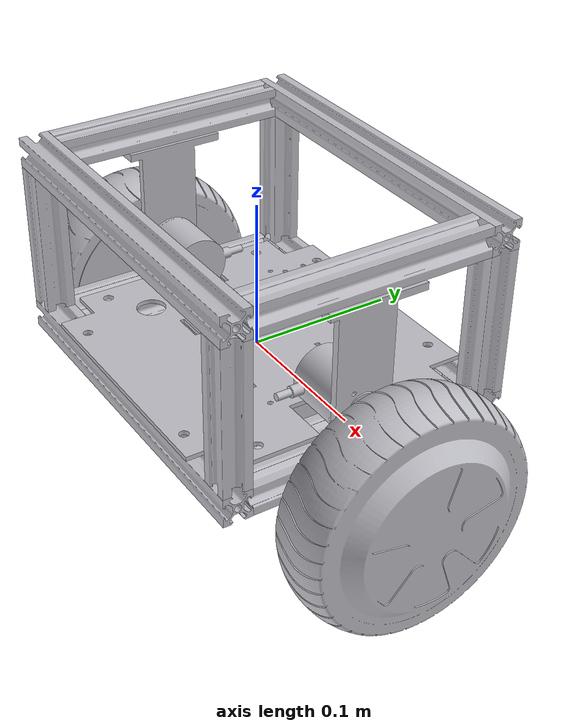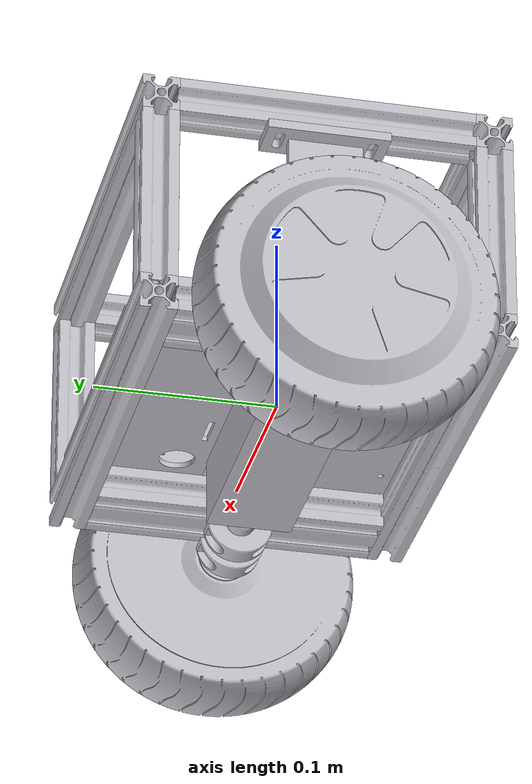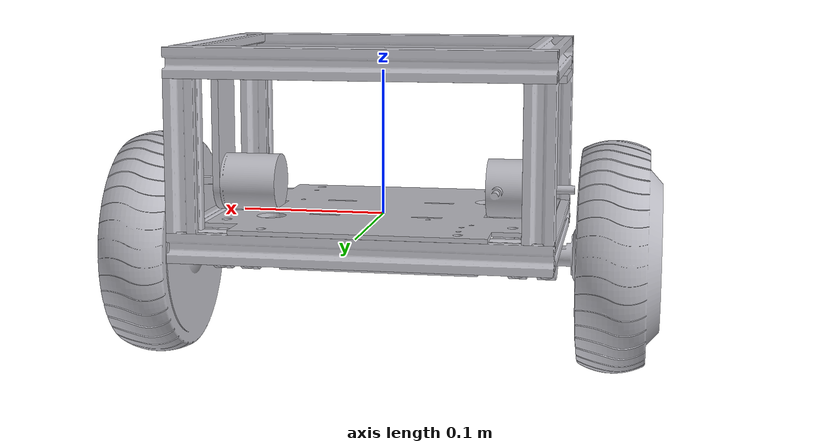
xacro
<?xml version="1.0" ?>
<robot name="assembly" xmlns:xacro="http://www.ros.org/wiki/xacro">

<xacro:include filename="$(find assembly_description)/urdf/materials.xacro" />
<xacro:include filename="$(find assembly_description)/urdf/assembly.trans" />
<xacro:include filename="$(find assembly_description)/urdf/assembly.gazebo" />
<link name="base_link">
  <inertial>
    <origin xyz="2.891151938704374e-05 -3.589068063802687e-05 0.0015000000000000011" rpy="0 0 0"/>
    <mass value="0.061915042915976895"/>
    <inertia ixx="0.000208" iyy="0.00019" izz="0.000398" ixy="3e-06" iyz="0.0" ixz="0.0"/>
  </inertial>
  <visual>
    <origin xyz="0 0 0" rpy="0 0 0"/>
    <geometry>
      <mesh filename="file://$(find assembly_description)/meshes/base_link.stl" scale="0.001 0.001 0.001"/>
    </geometry>
    <material name="silver"/>
  </visual>
  <collision>
    <origin xyz="0 0 0" rpy="0 0 0"/>
    <geometry>
      <mesh filename="file://$(find assembly_description)/meshes/base_link.stl" scale="0.001 0.001 0.001"/>
    </geometry>
  </collision>
</link>

<link name="Aluminium_20x20_250_back_1">
  <inertial>
    <origin xyz="-2.1316282072803005e-16 -0.009799998509883653 -0.009999999999999986" rpy="0 0 0"/>
    <mass value="0.10387281401481002"/>
    <inertia ixx="9e-06" iyy="0.000546" izz="0.000546" ixy="-0.0" iyz="-0.0" ixz="-0.0"/>
  </inertial>
  <visual>
    <origin xyz="-0.0 -0.1 -0.0" rpy="0 0 0"/>
    <geometry>
      <mesh filename="file://$(find assembly_description)/meshes/Aluminium_20x20_250_back_1.stl" scale="0.001 0.001 0.001"/>
    </geometry>
    <material name="silver"/>
  </visual>
  <collision>
    <origin xyz="-0.0 -0.1 -0.0" rpy="0 0 0"/>
    <geometry>
      <mesh filename="file://$(find assembly_description)/meshes/Aluminium_20x20_250_back_1.stl" scale="0.001 0.001 0.001"/>
    </geometry>
  </collision>
</link>

<link name="Battery_1">
  <inertial>
    <origin xyz="1.4210854715202004e-16 2.6645352591003756e-17 -0.019000000000000006" rpy="0 0 0"/>
    <mass value="1.9489182911"/>
    <inertia ixx="0.000593" iyy="0.003372" izz="0.003497" ixy="0.0" iyz="0.0" ixz="-0.0"/>
  </inertial>
  <visual>
    <origin xyz="-0.0 -0.0 -0.0" rpy="0 0 0"/>
    <geometry>
      <mesh filename="file://$(find assembly_description)/meshes/Battery_1.stl" scale="0.001 0.001 0.001"/>
    </geometry>
    <material name="silver"/>
  </visual>
  <collision>
    <origin xyz="-0.0 -0.0 -0.0" rpy="0 0 0"/>
    <geometry>
      <mesh filename="file://$(find assembly_description)/meshes/Battery_1.stl" scale="0.001 0.001 0.001"/>
    </geometry>
  </collision>
</link>

<link name="Aluminium_20x40_160_left_1">
  <inertial>
    <origin xyz="-0.23280000000004203 -0.08019999850988416 0.12499999999999298" rpy="0 0 0"/>
    <mass value="0.11612005351856171"/>
    <inertia ixx="0.000253" iyy="2.5e-05" izz="0.000267" ixy="-0.0" iyz="0.0" ixz="-0.0"/>
  </inertial>
  <visual>
    <origin xyz="-0.1278 -0.0804 0.135" rpy="0 0 0"/>
    <geometry>
      <mesh filename="file://$(find assembly_description)/meshes/Aluminium_20x40_160_left_1.stl" scale="0.001 0.001 0.001"/>
    </geometry>
    <material name="silver"/>
  </visual>
  <collision>
    <origin xyz="-0.1278 -0.0804 0.135" rpy="0 0 0"/>
    <geometry>
      <mesh filename="file://$(find assembly_description)/meshes/Aluminium_20x40_160_left_1.stl" scale="0.001 0.001 0.001"/>
    </geometry>
  </collision>
</link>

<link name="Aluminium_20x40_160_right_1">
  <inertial>
    <origin xyz="-0.022800000000042286 -0.08019999850988382 -0.12500000000001132" rpy="0 0 0"/>
    <mass value="0.11612005351856171"/>
    <inertia ixx="0.000253" iyy="2.5e-05" izz="0.000267" ixy="0.0" iyz="0.0" ixz="0.0"/>
  </inertial>
  <visual>
    <origin xyz="-0.1278 -0.0804 -0.115" rpy="0 0 0"/>
    <geometry>
      <mesh filename="file://$(find assembly_description)/meshes/Aluminium_20x40_160_right_1.stl" scale="0.001 0.001 0.001"/>
    </geometry>
    <material name="silver"/>
  </visual>
  <collision>
    <origin xyz="-0.1278 -0.0804 -0.115" rpy="0 0 0"/>
    <geometry>
      <mesh filename="file://$(find assembly_description)/meshes/Aluminium_20x40_160_right_1.stl" scale="0.001 0.001 0.001"/>
    </geometry>
  </collision>
</link>

<link name="Shaft_Collar_16mm_left1_1">
  <inertial>
    <origin xyz="-0.10499991829768908 0.02000000149011615 -0.03697410818676196" rpy="0 0 0"/>
    <mass value="0.01004347066493271"/>
    <inertia ixx="1e-06" iyy="0.0" izz="1e-06" ixy="0.0" iyz="-0.0" ixz="0.0"/>
  </inertial>
  <visual>
    <origin xyz="-0.2 0.0198 -0.0023" rpy="0 0 0"/>
    <geometry>
      <mesh filename="file://$(find assembly_description)/meshes/Shaft_Collar_16mm_left1_1.stl" scale="0.001 0.001 0.001"/>
    </geometry>
    <material name="silver"/>
  </visual>
  <collision>
    <origin xyz="-0.2 0.0198 -0.0023" rpy="0 0 0"/>
    <geometry>
      <mesh filename="file://$(find assembly_description)/meshes/Shaft_Collar_16mm_left1_1.stl" scale="0.001 0.001 0.001"/>
    </geometry>
  </collision>
</link>

<link name="Aluminium_20x20_250_front_1">
  <inertial>
    <origin xyz="0.22999999999999987 -0.0930999985098841 0.07979999999999995" rpy="0 0 0"/>
    <mass value="0.10387281401481002"/>
    <inertia ixx="9e-06" iyy="0.000546" izz="0.000546" ixy="-0.0" iyz="-0.0" ixz="-0.0"/>
  </inertial>
  <visual>
    <origin xyz="0.23 -0.0033 0.0898" rpy="0 0 0"/>
    <geometry>
      <mesh filename="file://$(find assembly_description)/meshes/Aluminium_20x20_250_front_1.stl" scale="0.001 0.001 0.001"/>
    </geometry>
    <material name="silver"/>
  </visual>
  <collision>
    <origin xyz="0.23 -0.0033 0.0898" rpy="0 0 0"/>
    <geometry>
      <mesh filename="file://$(find assembly_description)/meshes/Aluminium_20x20_250_front_1.stl" scale="0.001 0.001 0.001"/>
    </geometry>
  </collision>
</link>

<link name="Shaft_Collar_16mm_right2_1">
  <inertial>
    <origin xyz="0.105000081702311 1.4901159926740577e-09 -0.037374108186746" rpy="0 0 0"/>
    <mass value="0.01004347066493271"/>
    <inertia ixx="1e-06" iyy="0.0" izz="1e-06" ixy="0.0" iyz="-0.0" ixz="0.0"/>
  </inertial>
  <visual>
    <origin xyz="0.22 -0.0002 -0.0027" rpy="0 0 0"/>
    <geometry>
      <mesh filename="file://$(find assembly_description)/meshes/Shaft_Collar_16mm_right2_1.stl" scale="0.001 0.001 0.001"/>
    </geometry>
    <material name="silver"/>
  </visual>
  <collision>
    <origin xyz="0.22 -0.0002 -0.0027" rpy="0 0 0"/>
    <geometry>
      <mesh filename="file://$(find assembly_description)/meshes/Shaft_Collar_16mm_right2_1.stl" scale="0.001 0.001 0.001"/>
    </geometry>
  </collision>
</link>

<link name="Shaft_Collar_16mm_left2_1">
  <inertial>
    <origin xyz="-0.10499991829768884 0.020000001490116135 -0.011974108186761683" rpy="0 0 0"/>
    <mass value="0.01004347066493271"/>
    <inertia ixx="1e-06" iyy="0.0" izz="1e-06" ixy="0.0" iyz="-0.0" ixz="0.0"/>
  </inertial>
  <visual>
    <origin xyz="-0.22 0.0198 0.0227" rpy="0 0 0"/>
    <geometry>
      <mesh filename="file://$(find assembly_description)/meshes/Shaft_Collar_16mm_left2_1.stl" scale="0.001 0.001 0.001"/>
    </geometry>
    <material name="silver"/>
  </visual>
  <collision>
    <origin xyz="-0.22 0.0198 0.0227" rpy="0 0 0"/>
    <geometry>
      <mesh filename="file://$(find assembly_description)/meshes/Shaft_Collar_16mm_left2_1.stl" scale="0.001 0.001 0.001"/>
    </geometry>
  </collision>
</link>

<link name="Shaft_Collar_16mm_right1_1">
  <inertial>
    <origin xyz="0.10500008170231123 1.4901159216317104e-09 -0.037374108186746004" rpy="0 0 0"/>
    <mass value="0.01004347066493271"/>
    <inertia ixx="1e-06" iyy="0.0" izz="1e-06" ixy="0.0" iyz="-0.0" ixz="0.0"/>
  </inertial>
  <visual>
    <origin xyz="0.2 -0.0002 -0.0027" rpy="0 0 0"/>
    <geometry>
      <mesh filename="file://$(find assembly_description)/meshes/Shaft_Collar_16mm_right1_1.stl" scale="0.001 0.001 0.001"/>
    </geometry>
    <material name="silver"/>
  </visual>
  <collision>
    <origin xyz="0.2 -0.0002 -0.0027" rpy="0 0 0"/>
    <geometry>
      <mesh filename="file://$(find assembly_description)/meshes/Shaft_Collar_16mm_right1_1.stl" scale="0.001 0.001 0.001"/>
    </geometry>
  </collision>
</link>

<link name="Aluminium_20x20_100_back_left_1">
  <inertial>
    <origin xyz="-0.010000000000033427 0.007200001490116417 0.05000000000000083" rpy="0 0 0"/>
    <mass value="0.04154912560592385"/>
    <inertia ixx="3.6e-05" iyy="3.6e-05" izz="4e-06" ixy="0.0" iyz="0.0" ixz="0.0"/>
  </inertial>
  <visual>
    <origin xyz="-0.125 -0.083 -0.0" rpy="0 0 0"/>
    <geometry>
      <mesh filename="file://$(find assembly_description)/meshes/Aluminium_20x20_100_back_left_1.stl" scale="0.001 0.001 0.001"/>
    </geometry>
    <material name="silver"/>
  </visual>
  <collision>
    <origin xyz="-0.125 -0.083 -0.0" rpy="0 0 0"/>
    <geometry>
      <mesh filename="file://$(find assembly_description)/meshes/Aluminium_20x20_100_back_left_1.stl" scale="0.001 0.001 0.001"/>
    </geometry>
  </collision>
</link>

<link name="Aluminium_20x20_100_back_right_1">
  <inertial>
    <origin xyz="0.00999999999996666 -0.007199998509883607 0.04999999999999823" rpy="0 0 0"/>
    <mass value="0.04154912560592385"/>
    <inertia ixx="3.6e-05" iyy="3.6e-05" izz="4e-06" ixy="0.0" iyz="0.0" ixz="0.0"/>
  </inertial>
  <visual>
    <origin xyz="0.125 -0.0974 0.0" rpy="0 0 0"/>
    <geometry>
      <mesh filename="file://$(find assembly_description)/meshes/Aluminium_20x20_100_back_right_1.stl" scale="0.001 0.001 0.001"/>
    </geometry>
    <material name="silver"/>
  </visual>
  <collision>
    <origin xyz="0.125 -0.0974 0.0" rpy="0 0 0"/>
    <geometry>
      <mesh filename="file://$(find assembly_description)/meshes/Aluminium_20x20_100_back_right_1.stl" scale="0.001 0.001 0.001"/>
    </geometry>
  </collision>
</link>

<link name="Aluminium_20x20_100_front_right_1">
  <inertial>
    <origin xyz="0.0099999999999668 -0.007199998509883926 0.04999999999999823" rpy="0 0 0"/>
    <mass value="0.04154912560592385"/>
    <inertia ixx="3.6e-05" iyy="3.6e-05" izz="4e-06" ixy="0.0" iyz="0.0" ixz="0.0"/>
  </inertial>
  <visual>
    <origin xyz="0.125 0.0826 0.0" rpy="0 0 0"/>
    <geometry>
      <mesh filename="file://$(find assembly_description)/meshes/Aluminium_20x20_100_front_right_1.stl" scale="0.001 0.001 0.001"/>
    </geometry>
    <material name="silver"/>
  </visual>
  <collision>
    <origin xyz="0.125 0.0826 0.0" rpy="0 0 0"/>
    <geometry>
      <mesh filename="file://$(find assembly_description)/meshes/Aluminium_20x20_100_front_right_1.stl" scale="0.001 0.001 0.001"/>
    </geometry>
  </collision>
</link>

<link name="Aluminium_20x20_100_front_left_1">
  <inertial>
    <origin xyz="-0.010000000000033399 0.007200001490115987 0.05000000000000069" rpy="0 0 0"/>
    <mass value="0.04154912560592385"/>
    <inertia ixx="3.6e-05" iyy="3.6e-05" izz="4e-06" ixy="-0.0" iyz="0.0" ixz="0.0"/>
  </inertial>
  <visual>
    <origin xyz="-0.125 0.097 -0.0" rpy="0 0 0"/>
    <geometry>
      <mesh filename="file://$(find assembly_description)/meshes/Aluminium_20x20_100_front_left_1.stl" scale="0.001 0.001 0.001"/>
    </geometry>
    <material name="silver"/>
  </visual>
  <collision>
    <origin xyz="-0.125 0.097 -0.0" rpy="0 0 0"/>
    <geometry>
      <mesh filename="file://$(find assembly_description)/meshes/Aluminium_20x20_100_front_left_1.stl" scale="0.001 0.001 0.001"/>
    </geometry>
  </collision>
</link>

<link name="Aluminium_20x20_250_top_front_1">
  <inertial>
    <origin xyz="0.12499999999999947 0.007200001490115723 0.010000000000006656" rpy="0 0 0"/>
    <mass value="0.10387281401481002"/>
    <inertia ixx="9e-06" iyy="0.000546" izz="0.000546" ixy="0.0" iyz="-0.0" ixz="-0.0"/>
  </inertial>
  <visual>
    <origin xyz="0.125 0.097 -0.1" rpy="0 0 0"/>
    <geometry>
      <mesh filename="file://$(find assembly_description)/meshes/Aluminium_20x20_250_top_front_1.stl" scale="0.001 0.001 0.001"/>
    </geometry>
    <material name="silver"/>
  </visual>
  <collision>
    <origin xyz="0.125 0.097 -0.1" rpy="0 0 0"/>
    <geometry>
      <mesh filename="file://$(find assembly_description)/meshes/Aluminium_20x20_250_top_front_1.stl" scale="0.001 0.001 0.001"/>
    </geometry>
  </collision>
</link>

<link name="Aluminium_20x20_250_top_back_1">
  <inertial>
    <origin xyz="0.12500000000000017 0.00720000149011614 0.010000000000000703" rpy="0 0 0"/>
    <mass value="0.10387281401481002"/>
    <inertia ixx="9e-06" iyy="0.000546" izz="0.000546" ixy="0.0" iyz="-0.0" ixz="-0.0"/>
  </inertial>
  <visual>
    <origin xyz="0.125 -0.083 -0.1" rpy="0 0 0"/>
    <geometry>
      <mesh filename="file://$(find assembly_description)/meshes/Aluminium_20x20_250_top_back_1.stl" scale="0.001 0.001 0.001"/>
    </geometry>
    <material name="silver"/>
  </visual>
  <collision>
    <origin xyz="0.125 -0.083 -0.1" rpy="0 0 0"/>
    <geometry>
      <mesh filename="file://$(find assembly_description)/meshes/Aluminium_20x20_250_top_back_1.stl" scale="0.001 0.001 0.001"/>
    </geometry>
  </collision>
</link>

<link name="Aluminium_20x20_160_right_1">
  <inertial>
    <origin xyz="0.00999999999996612 0.08000000149011581 -0.007200000000001178" rpy="0 0 0"/>
    <mass value="0.06647860096947843"/>
    <inertia ixx="0.000145" iyy="6e-06" izz="0.000145" ixy="0.0" iyz="-0.0" ixz="0.0"/>
  </inertial>
  <visual>
    <origin xyz="0.125 0.0798 -0.1172" rpy="0 0 0"/>
    <geometry>
      <mesh filename="file://$(find assembly_description)/meshes/Aluminium_20x20_160_right_1.stl" scale="0.001 0.001 0.001"/>
    </geometry>
    <material name="silver"/>
  </visual>
  <collision>
    <origin xyz="0.125 0.0798 -0.1172" rpy="0 0 0"/>
    <geometry>
      <mesh filename="file://$(find assembly_description)/meshes/Aluminium_20x20_160_right_1.stl" scale="0.001 0.001 0.001"/>
    </geometry>
  </collision>
</link>

<link name="Aluminium_20x20_160_left_1">
  <inertial>
    <origin xyz="-0.010000000000033232 0.0800000014901157 -0.007199999999986745" rpy="0 0 0"/>
    <mass value="0.06647860096947843"/>
    <inertia ixx="0.000145" iyy="6e-06" izz="0.000145" ixy="0.0" iyz="-0.0" ixz="-0.0"/>
  </inertial>
  <visual>
    <origin xyz="-0.125 0.0798 -0.1172" rpy="0 0 0"/>
    <geometry>
      <mesh filename="file://$(find assembly_description)/meshes/Aluminium_20x20_160_left_1.stl" scale="0.001 0.001 0.001"/>
    </geometry>
    <material name="silver"/>
  </visual>
  <collision>
    <origin xyz="-0.125 0.0798 -0.1172" rpy="0 0 0"/>
    <geometry>
      <mesh filename="file://$(find assembly_description)/meshes/Aluminium_20x20_160_left_1.stl" scale="0.001 0.001 0.001"/>
    </geometry>
  </collision>
</link>

<link name="encoder_holding_left_1">
  <inertial>
    <origin xyz="-0.11500051814113516 -0.0399999985100823 -0.13226746099401204" rpy="0 0 0"/>
    <mass value="0.03259644778051005"/>
    <inertia ixx="3.5e-05" iyy="2.9e-05" izz="7e-06" ixy="-0.0" iyz="-0.0" ixz="0.0"/>
  </inertial>
  <visual>
    <origin xyz="-0.2299 -0.0402 -0.1998" rpy="0 0 0"/>
    <geometry>
      <mesh filename="file://$(find assembly_description)/meshes/encoder_holding_left_1.stl" scale="0.001 0.001 0.001"/>
    </geometry>
    <material name="silver"/>
  </visual>
  <collision>
    <origin xyz="-0.2299 -0.0402 -0.1998" rpy="0 0 0"/>
    <geometry>
      <mesh filename="file://$(find assembly_description)/meshes/encoder_holding_left_1.stl" scale="0.001 0.001 0.001"/>
    </geometry>
  </collision>
</link>

<link name="encoder_holding_right_1">
  <inertial>
    <origin xyz="0.11500051814114011 -0.039999998509686184 -0.13226746099402636" rpy="0 0 0"/>
    <mass value="0.03259644778051005"/>
    <inertia ixx="3.5e-05" iyy="2.9e-05" izz="7e-06" ixy="-0.0" iyz="0.0" ixz="-0.0"/>
  </inertial>
  <visual>
    <origin xyz="0.2301 -0.0402 -0.1998" rpy="0 0 0"/>
    <geometry>
      <mesh filename="file://$(find assembly_description)/meshes/encoder_holding_right_1.stl" scale="0.001 0.001 0.001"/>
    </geometry>
    <material name="silver"/>
  </visual>
  <collision>
    <origin xyz="0.2301 -0.0402 -0.1998" rpy="0 0 0"/>
    <geometry>
      <mesh filename="file://$(find assembly_description)/meshes/encoder_holding_right_1.stl" scale="0.001 0.001 0.001"/>
    </geometry>
  </collision>
</link>

<link name="E6B2_CWZ6C_left_1">
  <inertial>
    <origin xyz="-0.01875290146326239 0.007219493228867726 0.012990000000086096" rpy="0 0 0"/>
    <mass value="0.40304765945106313"/>
    <inertia ixx="8e-05" iyy="9.7e-05" izz="0.0001" ixy="-1e-06" iyz="-0.0" ixz="-0.0"/>
  </inertial>
  <visual>
    <origin xyz="-0.1124 0.0073 -0.00701" rpy="0 0 0"/>
    <geometry>
      <mesh filename="file://$(find assembly_description)/meshes/E6B2_CWZ6C_left_1.stl" scale="0.001 0.001 0.001"/>
    </geometry>
    <material name="silver"/>
  </visual>
  <collision>
    <origin xyz="-0.1124 0.0073 -0.00701" rpy="0 0 0"/>
    <geometry>
      <mesh filename="file://$(find assembly_description)/meshes/E6B2_CWZ6C_left_1.stl" scale="0.001 0.001 0.001"/>
    </geometry>
  </collision>
</link>

<link name="E6B2_CWZ6C_right_1">
  <inertial>
    <origin xyz="0.018752901463273353 0.015280509751363783 7.437106486207767e-14" rpy="0 0 0"/>
    <mass value="0.40304765945106313"/>
    <inertia ixx="8e-05" iyy="9.7e-05" izz="0.0001" ixy="-1e-06" iyz="0.0" ixz="0.0"/>
  </inertial>
  <visual>
    <origin xyz="0.1126 0.0148 -0.02" rpy="0 0 0"/>
    <geometry>
      <mesh filename="file://$(find assembly_description)/meshes/E6B2_CWZ6C_right_1.stl" scale="0.001 0.001 0.001"/>
    </geometry>
    <material name="silver"/>
  </visual>
  <collision>
    <origin xyz="0.1126 0.0148 -0.02" rpy="0 0 0"/>
    <geometry>
      <mesh filename="file://$(find assembly_description)/meshes/E6B2_CWZ6C_right_1.stl" scale="0.001 0.001 0.001"/>
    </geometry>
  </collision>
</link>

<link name="shaft_right_1">
  <inertial>
    <origin xyz="-0.022762486380473734 -4.2019268957479896e-08 -0.006217226931505088" rpy="0 0 0"/>
    <mass value="0.013420470010203595"/>
    <inertia ixx="0.0" iyy="4e-06" izz="4e-06" ixy="-0.0" iyz="0.0" ixz="0.0"/>
  </inertial>
  <visual>
    <origin xyz="0.085 -0.0002 0.0196" rpy="0 0 0"/>
    <geometry>
      <mesh filename="file://$(find assembly_description)/meshes/shaft_right_1.stl" scale="0.001 0.001 0.001"/>
    </geometry>
    <material name="silver"/>
  </visual>
  <collision>
    <origin xyz="0.085 -0.0002 0.0196" rpy="0 0 0"/>
    <geometry>
      <mesh filename="file://$(find assembly_description)/meshes/shaft_right_1.stl" scale="0.001 0.001 0.001"/>
    </geometry>
  </collision>
</link>

<link name="shaft_left_1">
  <inertial>
    <origin xyz="0.022762486380474123 4.4999497936958803e-08 -0.0062172269315027735" rpy="0 0 0"/>
    <mass value="0.013420470010203595"/>
    <inertia ixx="0.0" iyy="4e-06" izz="4e-06" ixy="-0.0" iyz="-0.0" ixz="-0.0"/>
  </inertial>
  <visual>
    <origin xyz="-0.085 -0.0002 0.0196" rpy="0 0 0"/>
    <geometry>
      <mesh filename="file://$(find assembly_description)/meshes/shaft_left_1.stl" scale="0.001 0.001 0.001"/>
    </geometry>
    <material name="silver"/>
  </visual>
  <collision>
    <origin xyz="-0.085 -0.0002 0.0196" rpy="0 0 0"/>
    <geometry>
      <mesh filename="file://$(find assembly_description)/meshes/shaft_left_1.stl" scale="0.001 0.001 0.001"/>
    </geometry>
  </collision>
</link>

<link name="wheel_right_1">
  <inertial>
    <origin xyz="-0.02940512086412911 -1.349316031394349e-07 -2.022076194888034e-07" rpy="0 0 0"/>
    <mass value="7.444060405041716"/>
    <inertia ixx="0.021214" iyy="0.012202" izz="0.012202" ixy="-0.0" iyz="0.0" ixz="-0.0"/>
  </inertial>
  <visual>
    <origin xyz="0.1326 -0.0002 0.0251" rpy="0 0 0"/>
    <geometry>
      <mesh filename="file://$(find assembly_description)/meshes/wheel_right_1.stl" scale="0.001 0.001 0.001"/>
    </geometry>
    <material name="silver"/>
  </visual>
  <collision>
    <origin xyz="0.1326 -0.0002 0.0251" rpy="0 0 0"/>
    <geometry>
      <mesh filename="file://$(find assembly_description)/meshes/wheel_right_1.stl" scale="0.001 0.001 0.001"/>
    </geometry>
  </collision>
</link>

<link name="wheel_left_1">
  <inertial>
    <origin xyz="0.029405072603979426 -8.089466567255937e-08 2.1975734094611954e-07" rpy="0 0 0"/>
    <mass value="7.4441482758744355"/>
    <inertia ixx="0.021214" iyy="0.012203" izz="0.012203" ixy="-0.0" iyz="0.0" ixz="0.0"/>
  </inertial>
  <visual>
    <origin xyz="-0.1326 -0.0002 0.0251" rpy="0 0 0"/>
    <geometry>
      <mesh filename="file://$(find assembly_description)/meshes/wheel_left_1.stl" scale="0.001 0.001 0.001"/>
    </geometry>
    <material name="silver"/>
  </visual>
  <collision>
    <origin xyz="-0.1326 -0.0002 0.0251" rpy="0 0 0"/>
    <geometry>
      <mesh filename="file://$(find assembly_description)/meshes/wheel_left_1.stl" scale="0.001 0.001 0.001"/>
    </geometry>
  </collision>
</link>

<joint name="Rigid 2" type="fixed">
  <origin xyz="0.0 0.1 0.0" rpy="0 0 0"/>
  <parent link="base_link"/>
  <child link="Aluminium_20x20_250_back_1"/>
</joint>

<joint name="Rigid 3" type="fixed">
  <origin xyz="0.0 0.0 0.0" rpy="0 0 0"/>
  <parent link="base_link"/>
  <child link="Battery_1"/>
</joint>

<joint name="Rigid 4" type="fixed">
  <origin xyz="0.1278 -0.0196 -0.135" rpy="0 0 0"/>
  <parent link="Aluminium_20x20_250_back_1"/>
  <child link="Aluminium_20x40_160_left_1"/>
</joint>

<joint name="Rigid 5" type="fixed">
  <origin xyz="0.1278 -0.0196 0.115" rpy="0 0 0"/>
  <parent link="Aluminium_20x20_250_back_1"/>
  <child link="Aluminium_20x40_160_right_1"/>
</joint>

<joint name="Rigid 6" type="fixed">
  <origin xyz="0.0722 -0.1002 -0.1127" rpy="0 0 0"/>
  <parent link="Aluminium_20x40_160_right_1"/>
  <child link="Shaft_Collar_16mm_left1_1"/>
</joint>

<joint name="Rigid 8" type="fixed">
  <origin xyz="-0.3578 -0.0771 0.0452" rpy="0 0 0"/>
  <parent link="Aluminium_20x40_160_left_1"/>
  <child link="Aluminium_20x20_250_front_1"/>
</joint>

<joint name="Rigid 10" type="fixed">
  <origin xyz="-0.3478 -0.0802 0.1377" rpy="0 0 0"/>
  <parent link="Aluminium_20x40_160_left_1"/>
  <child link="Shaft_Collar_16mm_right2_1"/>
</joint>

<joint name="Rigid 11" type="fixed">
  <origin xyz="0.0922 -0.1002 -0.1377" rpy="0 0 0"/>
  <parent link="Aluminium_20x40_160_right_1"/>
  <child link="Shaft_Collar_16mm_left2_1"/>
</joint>

<joint name="Rigid 12" type="fixed">
  <origin xyz="-0.3278 -0.0802 0.1377" rpy="0 0 0"/>
  <parent link="Aluminium_20x40_160_left_1"/>
  <child link="Shaft_Collar_16mm_right1_1"/>
</joint>

<joint name="Rigid 13" type="fixed">
  <origin xyz="0.125 -0.017 0.0" rpy="0 0 0"/>
  <parent link="Aluminium_20x20_250_back_1"/>
  <child link="Aluminium_20x20_100_back_left_1"/>
</joint>

<joint name="Rigid 14" type="fixed">
  <origin xyz="-0.125 -0.0026 -0.0" rpy="0 0 0"/>
  <parent link="Aluminium_20x20_250_back_1"/>
  <child link="Aluminium_20x20_100_back_right_1"/>
</joint>

<joint name="Rigid 15" type="fixed">
  <origin xyz="0.105 -0.0859 0.0898" rpy="0 0 0"/>
  <parent link="Aluminium_20x20_250_front_1"/>
  <child link="Aluminium_20x20_100_front_right_1"/>
</joint>

<joint name="Rigid 16" type="fixed">
  <origin xyz="0.355 -0.1003 0.0898" rpy="0 0 0"/>
  <parent link="Aluminium_20x20_250_front_1"/>
  <child link="Aluminium_20x20_100_front_left_1"/>
</joint>

<joint name="Rigid 19" type="fixed">
  <origin xyz="0.0 -0.0144 0.1" rpy="0 0 0"/>
  <parent link="Aluminium_20x20_100_front_right_1"/>
  <child link="Aluminium_20x20_250_top_front_1"/>
</joint>

<joint name="Rigid 20" type="fixed">
  <origin xyz="0.0 -0.0144 0.1" rpy="0 0 0"/>
  <parent link="Aluminium_20x20_100_back_right_1"/>
  <child link="Aluminium_20x20_250_top_back_1"/>
</joint>

<joint name="Rigid 21" type="fixed">
  <origin xyz="0.0 0.0172 0.0172" rpy="0 0 0"/>
  <parent link="Aluminium_20x20_250_top_front_1"/>
  <child link="Aluminium_20x20_160_right_1"/>
</joint>

<joint name="Rigid 22" type="fixed">
  <origin xyz="0.25 0.0172 0.0172" rpy="0 0 0"/>
  <parent link="Aluminium_20x20_250_top_front_1"/>
  <child link="Aluminium_20x20_160_left_1"/>
</joint>

<joint name="Rigid 27" type="fixed">
  <origin xyz="0.1049 0.12 0.0826" rpy="0 0 0"/>
  <parent link="Aluminium_20x20_160_left_1"/>
  <child link="encoder_holding_left_1"/>
</joint>

<joint name="Rigid 28" type="fixed">
  <origin xyz="-0.1051 0.12 0.0826" rpy="0 0 0"/>
  <parent link="Aluminium_20x20_160_right_1"/>
  <child link="encoder_holding_right_1"/>
</joint>

<joint name="Rigid 29" type="fixed">
  <origin xyz="-0.1175 -0.0475 -0.19279" rpy="0 0 0"/>
  <parent link="encoder_holding_left_1"/>
  <child link="E6B2_CWZ6C_left_1"/>
</joint>

<joint name="Rigid 30" type="fixed">
  <origin xyz="0.1175 -0.055 -0.1798" rpy="0 0 0"/>
  <parent link="encoder_holding_right_1"/>
  <child link="E6B2_CWZ6C_right_1"/>
</joint>

<joint name="Rigid 31" type="fixed">
  <origin xyz="-0.2128 -0.0802 0.1154" rpy="0 0 0"/>
  <parent link="Aluminium_20x40_160_left_1"/>
  <child link="shaft_right_1"/>
</joint>

<joint name="Rigid 32" type="fixed">
  <origin xyz="-0.0428 -0.0802 -0.1346" rpy="0 0 0"/>
  <parent link="Aluminium_20x40_160_right_1"/>
  <child link="shaft_left_1"/>
</joint>

<joint name="Revolute 35" type="continuous">
  <origin xyz="-0.0476 0.0 -0.0055" rpy="0 0 0"/>
  <parent link="shaft_right_1"/>
  <child link="wheel_right_1"/>
  <axis xyz="1.0 0.0 0.0"/>
</joint>

<joint name="Revolute 36" type="continuous">
  <origin xyz="0.0476 0.0 -0.0055" rpy="0 0 0"/>
  <parent link="shaft_left_1"/>
  <child link="wheel_left_1"/>
  <axis xyz="1.0 -0.0 0.0"/>
</joint>

</robot>

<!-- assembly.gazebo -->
<robot name="assembly" xmlns:xacro="http://www.ros.org/wiki/xacro" >

<xacro:property name="body_color" value="Gazebo/Silver" />

<gazebo>
  <plugin name="control" filename="libgazebo_ros_control.so"/>
</gazebo>
<gazebo reference="base_link">
  <material>${body_color}</material>
  <mu1>0.2</mu1>
  <mu2>0.2</mu2>
  <self_collide>true</self_collide>
  <gravity>true</gravity>
</gazebo>

<gazebo reference="Aluminium_20x20_250_back_1">
  <material>${body_color}</material>
  <mu1>0.2</mu1>
  <mu2>0.2</mu2>
  <self_collide>true</self_collide>
</gazebo>

<gazebo reference="Battery_1">
  <material>${body_color}</material>
  <mu1>0.2</mu1>
  <mu2>0.2</mu2>
  <self_collide>true</self_collide>
</gazebo>

<gazebo reference="Aluminium_20x40_160_left_1">
  <material>${body_color}</material>
  <mu1>0.2</mu1>
  <mu2>0.2</mu2>
  <self_collide>true</self_collide>
</gazebo>

<gazebo reference="Aluminium_20x40_160_right_1">
  <material>${body_color}</material>
  <mu1>0.2</mu1>
  <mu2>0.2</mu2>
  <self_collide>true</self_collide>
</gazebo>

<gazebo reference="Shaft_Collar_16mm_left1_1">
  <material>${body_color}</material>
  <mu1>0.2</mu1>
  <mu2>0.2</mu2>
  <self_collide>true</self_collide>
</gazebo>

<gazebo reference="Aluminium_20x20_250_front_1">
  <material>${body_color}</material>
  <mu1>0.2</mu1>
  <mu2>0.2</mu2>
  <self_collide>true</self_collide>
</gazebo>

<gazebo reference="Shaft_Collar_16mm_right2_1">
  <material>${body_color}</material>
  <mu1>0.2</mu1>
  <mu2>0.2</mu2>
  <self_collide>true</self_collide>
</gazebo>

<gazebo reference="Shaft_Collar_16mm_left2_1">
  <material>${body_color}</material>
  <mu1>0.2</mu1>
  <mu2>0.2</mu2>
  <self_collide>true</self_collide>
</gazebo>

<gazebo reference="Shaft_Collar_16mm_right1_1">
  <material>${body_color}</material>
  <mu1>0.2</mu1>
  <mu2>0.2</mu2>
  <self_collide>true</self_collide>
</gazebo>

<gazebo reference="Aluminium_20x20_100_back_left_1">
  <material>${body_color}</material>
  <mu1>0.2</mu1>
  <mu2>0.2</mu2>
  <self_collide>true</self_collide>
</gazebo>

<gazebo reference="Aluminium_20x20_100_back_right_1">
  <material>${body_color}</material>
  <mu1>0.2</mu1>
  <mu2>0.2</mu2>
  <self_collide>true</self_collide>
</gazebo>

<gazebo reference="Aluminium_20x20_100_front_right_1">
  <material>${body_color}</material>
  <mu1>0.2</mu1>
  <mu2>0.2</mu2>
  <self_collide>true</self_collide>
</gazebo>

<gazebo reference="Aluminium_20x20_100_front_left_1">
  <material>${body_color}</material>
  <mu1>0.2</mu1>
  <mu2>0.2</mu2>
  <self_collide>true</self_collide>
</gazebo>

<gazebo reference="Aluminium_20x20_250_top_front_1">
  <material>${body_color}</material>
  <mu1>0.2</mu1>
  <mu2>0.2</mu2>
  <self_collide>true</self_collide>
</gazebo>

<gazebo reference="Aluminium_20x20_250_top_back_1">
  <material>${body_color}</material>
  <mu1>0.2</mu1>
  <mu2>0.2</mu2>
  <self_collide>true</self_collide>
</gazebo>

<gazebo reference="Aluminium_20x20_160_right_1">
  <material>${body_color}</material>
  <mu1>0.2</mu1>
  <mu2>0.2</mu2>
  <self_collide>true</self_collide>
</gazebo>

<gazebo reference="Aluminium_20x20_160_left_1">
  <material>${body_color}</material>
  <mu1>0.2</mu1>
  <mu2>0.2</mu2>
  <self_collide>true</self_collide>
</gazebo>

<gazebo reference="encoder_holding_left_1">
  <material>${body_color}</material>
  <mu1>0.2</mu1>
  <mu2>0.2</mu2>
  <self_collide>true</self_collide>
</gazebo>

<gazebo reference="encoder_holding_right_1">
  <material>${body_color}</material>
  <mu1>0.2</mu1>
  <mu2>0.2</mu2>
  <self_collide>true</self_collide>
</gazebo>

<gazebo reference="E6B2_CWZ6C_left_1">
  <material>${body_color}</material>
  <mu1>0.2</mu1>
  <mu2>0.2</mu2>
  <self_collide>true</self_collide>
</gazebo>

<gazebo reference="E6B2_CWZ6C_right_1">
  <material>${body_color}</material>
  <mu1>0.2</mu1>
  <mu2>0.2</mu2>
  <self_collide>true</self_collide>
</gazebo>

<gazebo reference="haft_right_1">
  <material>${body_color}</material>
  <mu1>0.2</mu1>
  <mu2>0.2</mu2>
  <self_collide>true</self_collide>
</gazebo>

<gazebo reference="shaft_left_1">
  <material>${body_color}</material>
  <mu1>0.2</mu1>
  <mu2>0.2</mu2>
  <self_collide>true</self_collide>
</gazebo>

<gazebo reference="wheel_right_1">
  <material>${body_color}</material>
  <mu1>0.2</mu1>
  <mu2>0.2</mu2>
  <self_collide>true</self_collide>
</gazebo>

<gazebo reference="wheel_left_1">
  <material>${body_color}</material>
  <mu1>0.2</mu1>
  <mu2>0.2</mu2>
  <self_collide>true</self_collide>
</gazebo>

</robot>
